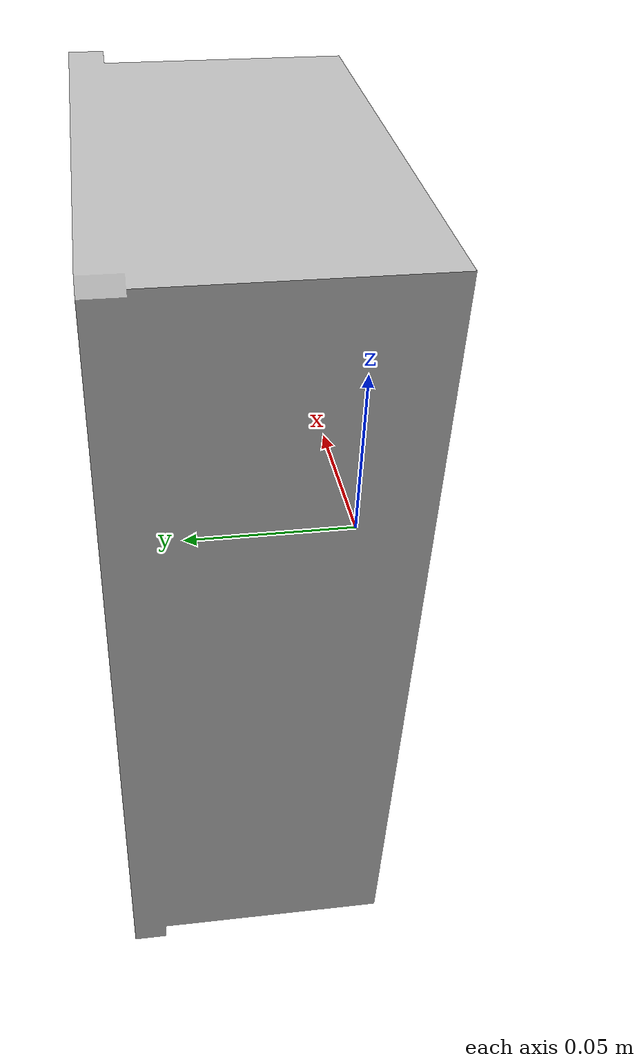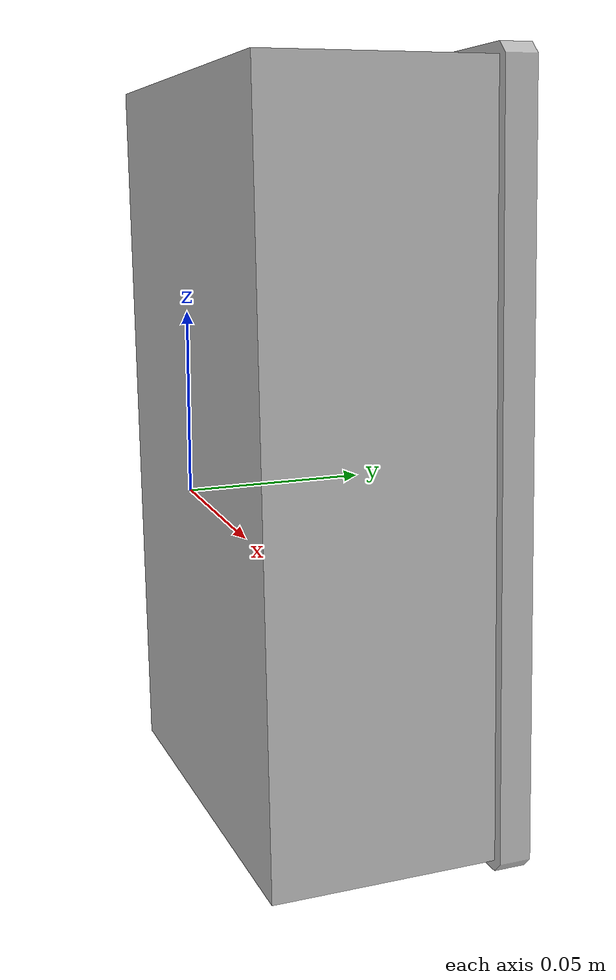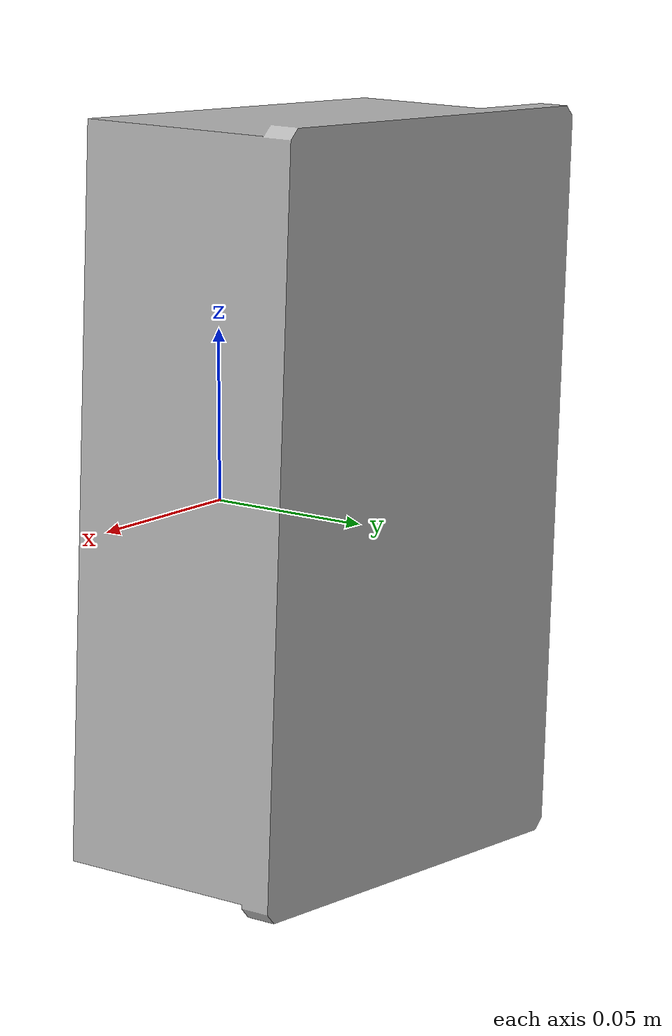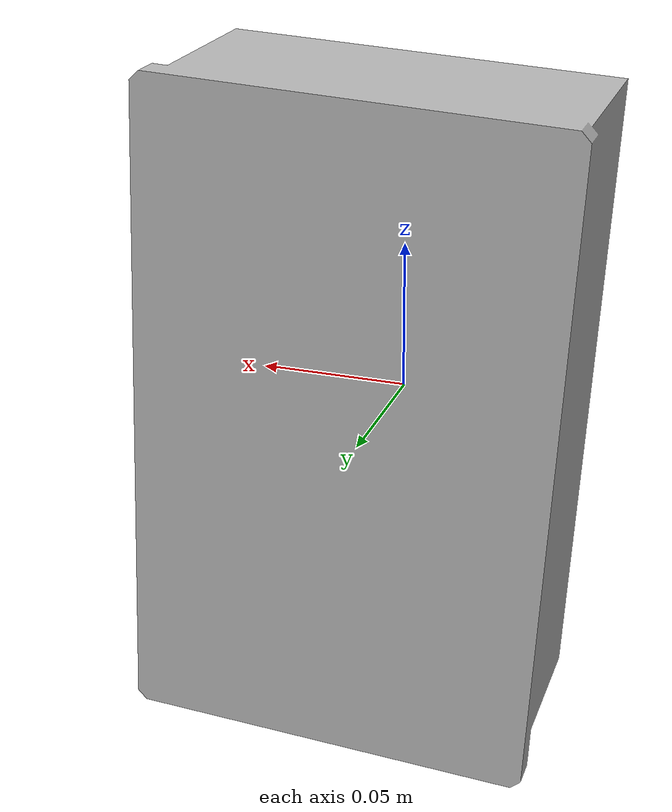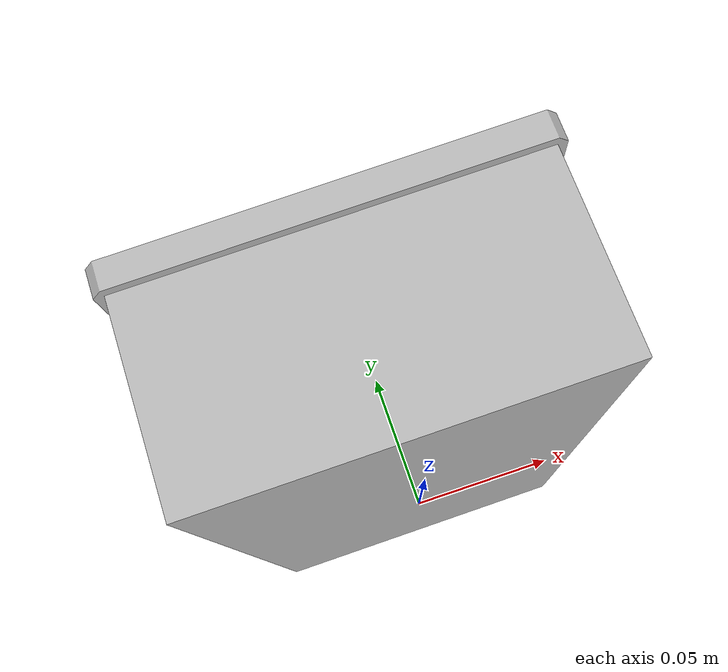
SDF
<?xml version="1.0" ?>
<sdf version="1.4">
  <model name="shelf2_box2_1a">
    <link name="body">
      <pose>0 0 0 0 0 0</pose>
      <inertial>
        <pose>  -0.000853   0.037438   0.009224 0 0 0</pose>
        <mass>0.5</mass>
        <inertia>
          <ixx>0.01</ixx>
          <ixy>0</ixy>
          <ixz>0</ixz>
          <iyy>0.01</iyy>
          <iyz>0</iyz>
          <izz>0.01</izz>
        </inertia>
      </inertial>
      <collision name="collision">
        <geometry>
          <mesh>
            <uri>model://bookshelf/shelf2_items/box2_1a/box2_1a.dae</uri>
          </mesh>
        </geometry>
      </collision>
      <visual name="visual">
        <geometry>
          <mesh>
            <uri>model://bookshelf/shelf2_items/box2_1a/box2_1a.dae</uri>
          </mesh>
        </geometry>
      </visual>
    </link>
  </model>
</sdf>
